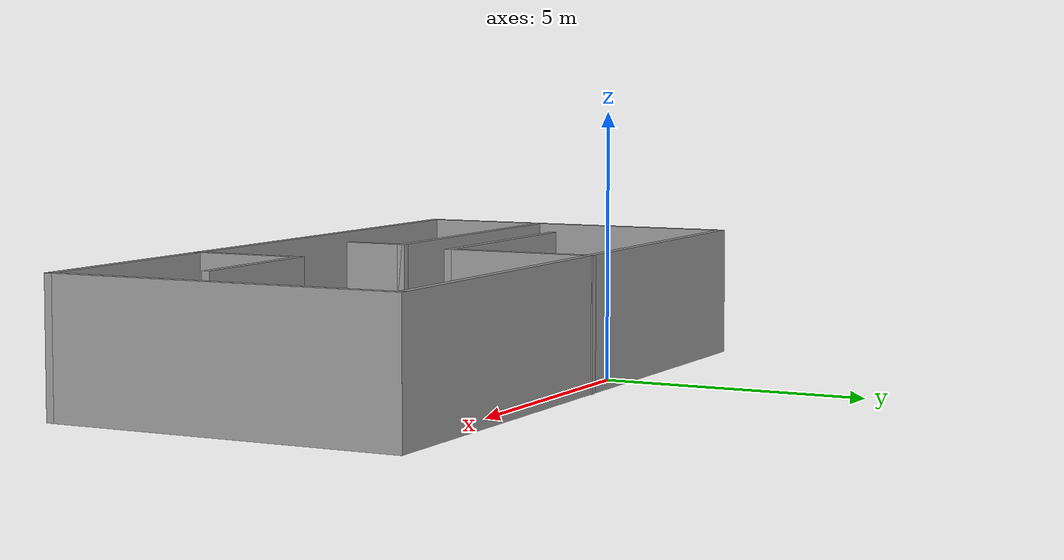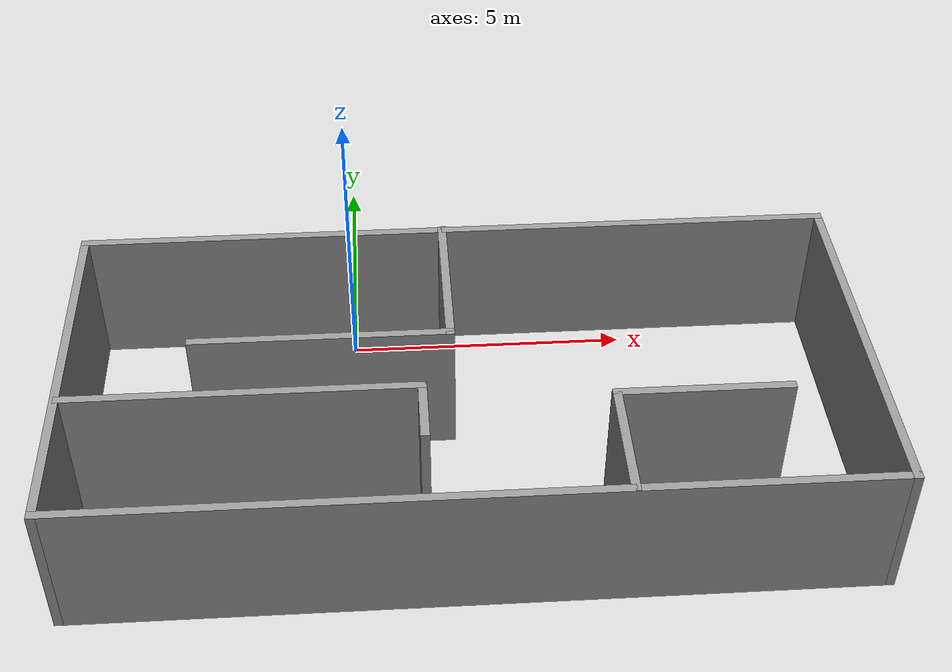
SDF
<?xml version='1.0'?>
<sdf version='1.7'>
  <model name='room'>
    <pose>1.92734 -2.90176 0 0 -0 0</pose>
    <link name='Wall_1'>
      <collision name='Wall_1_Collision'>
        <geometry>
          <box>
            <size>13.5 0.15 2.5</size>
          </box>
        </geometry>
        <pose>0 0 1.25 0 -0 0</pose>
      </collision>
      <visual name='Wall_1_Visual'>
        <pose>0 0 1.25 0 -0 0</pose>
        <geometry>
          <box>
            <size>13.5 0.15 2.5</size>
          </box>
        </geometry>
        <material>
          <script>
            <uri>file://media/materials/scripts/gazebo.material</uri>
            <name>Gazebo/Grey</name>
          </script>
          <ambient>1 1 1 1</ambient>
        </material>
        <meta>
          <layer>0</layer>
        </meta>
      </visual>
      <pose>-0 3.28812 0 0 -0 0</pose>
    </link>
    <link name='Wall_13'>
      <collision name='Wall_13_Collision'>
        <geometry>
          <box>
            <size>6 0.15 2.5</size>
          </box>
        </geometry>
        <pose>0 0 1.25 0 -0 0</pose>
      </collision>
      <visual name='Wall_13_Visual'>
        <pose>0 0 1.25 0 -0 0</pose>
        <geometry>
          <box>
            <size>6 0.15 2.5</size>
          </box>
        </geometry>
        <material>
          <script>
            <uri>file://media/materials/scripts/gazebo.material</uri>
            <name>Gazebo/Grey</name>
          </script>
          <ambient>1 1 1 1</ambient>
        </material>
        <meta>
          <layer>0</layer>
        </meta>
      </visual>
      <pose>-3.69355 -0.828744 0 0 -0 0</pose>
    </link>
    <link name='Wall_14'>
      <collision name='Wall_14_Collision'>
        <geometry>
          <box>
            <size>1.25 0.15 2.5</size>
          </box>
        </geometry>
        <pose>0 0 1.25 0 -0 0</pose>
      </collision>
      <visual name='Wall_14_Visual'>
        <pose>0 0 1.25 0 -0 0</pose>
        <geometry>
          <box>
            <size>1.25 0.15 2.5</size>
          </box>
        </geometry>
        <material>
          <script>
            <uri>file://media/materials/scripts/gazebo.material</uri>
            <name>Gazebo/Grey</name>
          </script>
          <ambient>1 1 1 1</ambient>
        </material>
        <meta>
          <layer>0</layer>
        </meta>
      </visual>
      <pose>-0.76855 -1.37874 0 0 -0 -1.5708</pose>
    </link>
    <link name='Wall_2'>
      <collision name='Wall_2_Collision'>
        <geometry>
          <box>
            <size>6.75 0.15 2.5</size>
          </box>
        </geometry>
        <pose>0 0 1.25 0 -0 0</pose>
      </collision>
      <visual name='Wall_2_Visual'>
        <pose>0 0 1.25 0 -0 0</pose>
        <geometry>
          <box>
            <size>6.75 0.15 2.5</size>
          </box>
        </geometry>
        <material>
          <script>
            <uri>file://media/materials/scripts/gazebo.material</uri>
            <name>Gazebo/Grey</name>
          </script>
          <ambient>1 1 1 1</ambient>
        </material>
        <meta>
          <layer>0</layer>
        </meta>
      </visual>
      <pose>6.675 -0.011884 0 0 -0 -1.5708</pose>
    </link>
    <link name='Wall_20'>
      <collision name='Wall_20_Collision'>
        <geometry>
          <box>
            <size>2.25 0.15 2.5</size>
          </box>
        </geometry>
        <pose>0 0 1.25 0 -0 0</pose>
      </collision>
      <visual name='Wall_20_Visual'>
        <pose>0 0 1.25 0 -0 0</pose>
        <geometry>
          <box>
            <size>2.25 0.15 2.5</size>
          </box>
        </geometry>
        <material>
          <script>
            <uri>file://media/materials/scripts/gazebo.material</uri>
            <name>Gazebo/Grey</name>
          </script>
          <ambient>1 1 1 1</ambient>
        </material>
        <meta>
          <layer>0</layer>
        </meta>
      </visual>
      <pose>2.36056 -2.24451 0 0 -0 1.5708</pose>
    </link>
    <link name='Wall_21'>
      <collision name='Wall_21_Collision'>
        <geometry>
          <box>
            <size>3 0.15 2.5</size>
          </box>
        </geometry>
        <pose>0 0 1.25 0 -0 0</pose>
      </collision>
      <visual name='Wall_21_Visual'>
        <pose>0 0 1.25 0 -0 0</pose>
        <geometry>
          <box>
            <size>3 0.15 2.5</size>
          </box>
        </geometry>
        <material>
          <script>
            <uri>file://media/materials/scripts/gazebo.material</uri>
            <name>Gazebo/Grey</name>
          </script>
          <ambient>1 1 1 1</ambient>
        </material>
        <meta>
          <layer>0</layer>
        </meta>
      </visual>
      <pose>3.78557 -1.19451 0 0 -0 0</pose>
    </link>
    <link name='Wall_5'>
      <collision name='Wall_5_Collision'>
        <geometry>
          <box>
            <size>6.75 0.15 2.5</size>
          </box>
        </geometry>
        <pose>0 0 1.25 0 -0 0</pose>
      </collision>
      <visual name='Wall_5_Visual'>
        <pose>0 0 1.25 0 -0 0</pose>
        <geometry>
          <box>
            <size>6.75 0.15 2.5</size>
          </box>
        </geometry>
        <material>
          <script>
            <uri>file://media/materials/scripts/gazebo.material</uri>
            <name>Gazebo/Grey</name>
          </script>
          <ambient>1 1 1 1</ambient>
        </material>
        <meta>
          <layer>0</layer>
        </meta>
      </visual>
      <pose>-6.675 -0.011884 0 0 -0 -1.5708</pose>
    </link>
    <link name='Wall_6'>
      <collision name='Wall_6_Collision'>
        <geometry>
          <box>
            <size>13.5 0.15 2.5</size>
          </box>
        </geometry>
        <pose>0 0 1.25 0 -0 0</pose>
      </collision>
      <visual name='Wall_6_Visual'>
        <pose>0 0 1.25 0 -0 0</pose>
        <geometry>
          <box>
            <size>13.5 0.15 2.5</size>
          </box>
        </geometry>
        <material>
          <script>
            <uri>file://media/materials/scripts/gazebo.material</uri>
            <name>Gazebo/Grey</name>
          </script>
          <ambient>1 1 1 1</ambient>
        </material>
        <meta>
          <layer>0</layer>
        </meta>
      </visual>
      <pose>-0 -3.31188 0 0 -0 0</pose>
    </link>
    <link name='Wall_8'>
      <collision name='Wall_8_Collision'>
        <geometry>
          <box>
            <size>3 0.15 2.5</size>
          </box>
        </geometry>
        <pose>0 0 1.25 0 -0 0</pose>
      </collision>
      <visual name='Wall_8_Visual'>
        <pose>0 0 1.25 0 -0 0</pose>
        <geometry>
          <box>
            <size>3 0.15 2.5</size>
          </box>
        </geometry>
        <material>
          <script>
            <uri>file://media/materials/scripts/gazebo.material</uri>
            <name>Gazebo/Grey</name>
          </script>
          <ambient>1 1 1 1</ambient>
        </material>
        <meta>
          <layer>0</layer>
        </meta>
      </visual>
      <pose>-0.244774 1.88688 0 0 -0 -1.5708</pose>
    </link>
    <link name='Wall_9'>
      <collision name='Wall_9_Collision'>
        <geometry>
          <box>
            <size>4.5 0.15 2.5</size>
          </box>
        </geometry>
        <pose>0 0 1.25 0 -0 0</pose>
      </collision>
      <visual name='Wall_9_Visual'>
        <pose>0 0 1.25 0 -0 0</pose>
        <geometry>
          <box>
            <size>4.5 0.15 2.5</size>
          </box>
        </geometry>
        <material>
          <script>
            <uri>file://media/materials/scripts/gazebo.material</uri>
            <name>Gazebo/Grey</name>
          </script>
          <ambient>1 1 1 1</ambient>
        </material>
        <meta>
          <layer>0</layer>
        </meta>
      </visual>
      <pose>-2.41977 0.461884 0 0 -0 3.14159</pose>
    </link>
    <static>1</static>
  </model>
</sdf>
